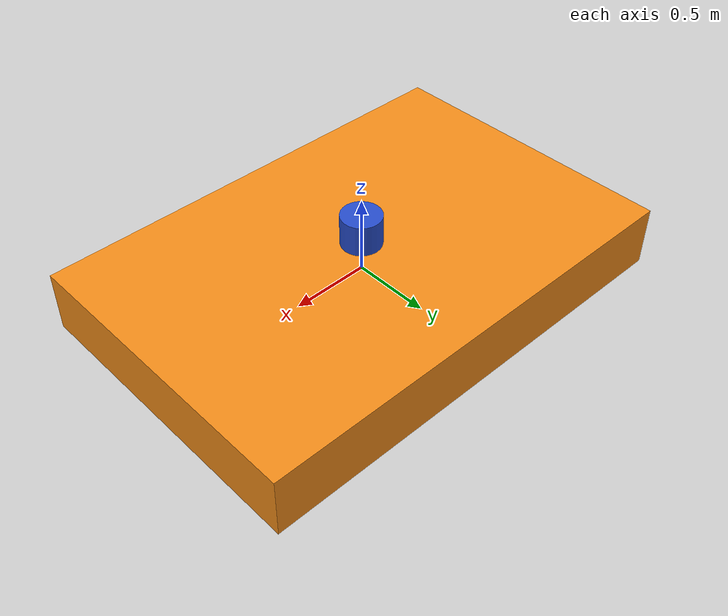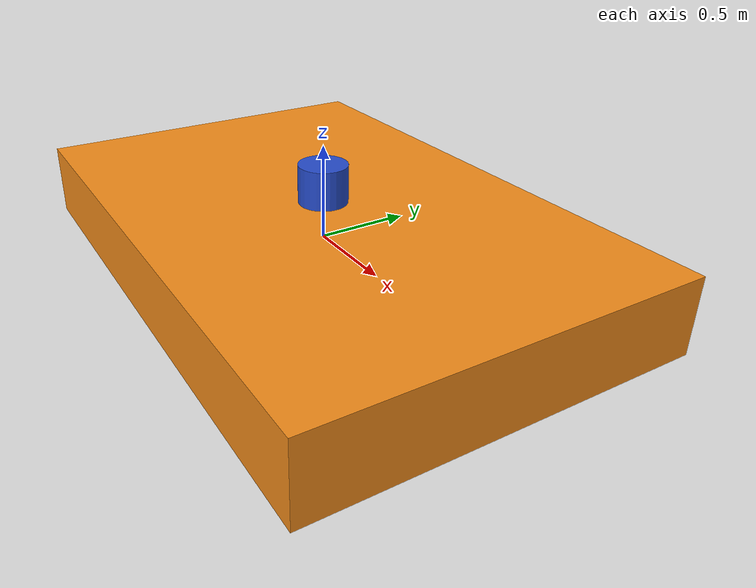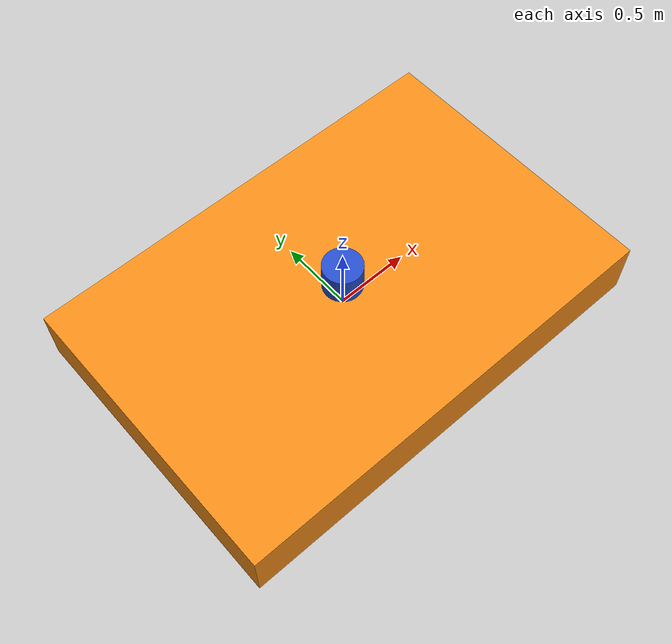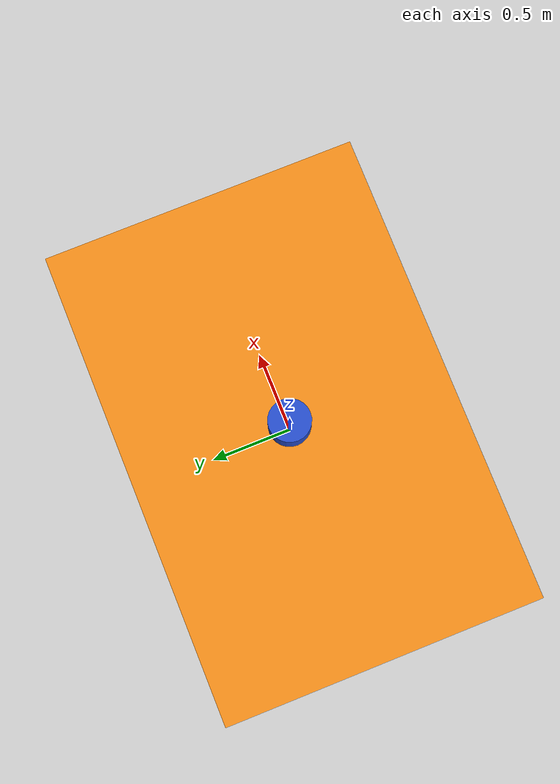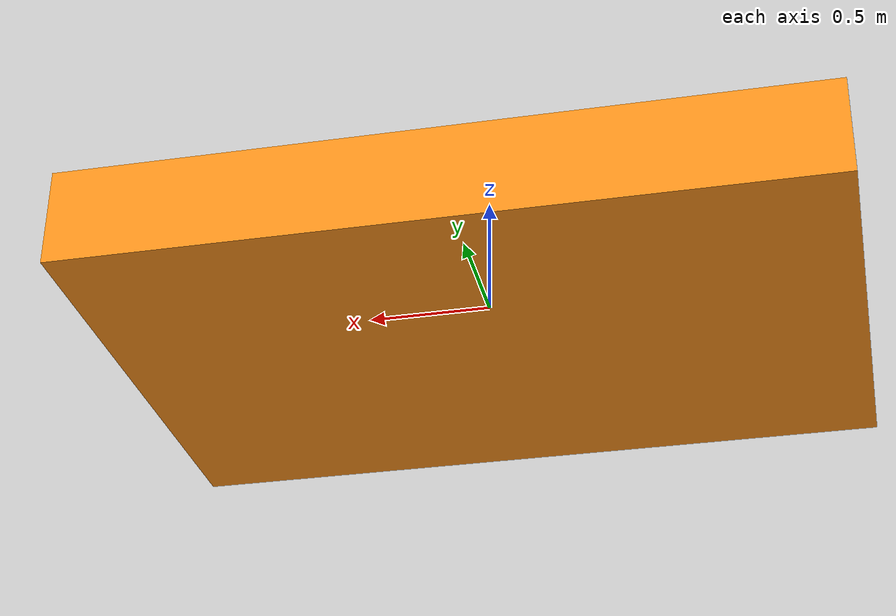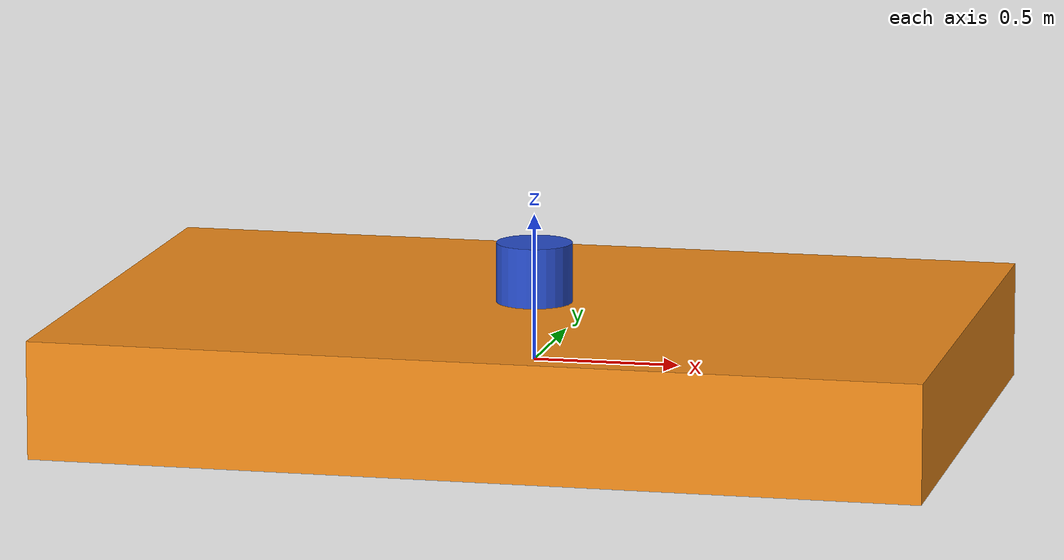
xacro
<?xml version="1.0"?>
<!-- Revolute-Revolute Manipulator -->
<robot name="robo" xmlns:xacro="http://www.ros.org/wiki/xacro">

  <!-- Constants for robot dimensions -->
  <xacro:property name="PI" value="3.1415926535897931"/>
  <xacro:property name="mass" value="5" /> <!-- arbitrary value for mass -->
  <xacro:property name="width" value="1.3" /> <!-- Square dimensions (widthxwidth) of beams -->
  <xacro:property name="height1" value="0.2" /> <!-- Link 1 -->
  <xacro:property name="height2" value="1" /> <!-- Link 2 -->
  <xacro:property name="height3" value="1" /> <!-- Link 3 -->
  <xacro:property name="camera_link" value="0.05" /> <!-- Size of square 'camera' box -->
  <xacro:property name="axel_offset" value="0.05" /> <!-- Space btw top of beam and the each joint -->

  <!-- Import all Gazebo-customization elements, including Gazebo colors -->
  <xacro:include filename="$(find table_docking)/urdf/robo.gazebo" />
  <!-- Import Rviz colors -->
  <xacro:include filename="$(find table_docking)/urdf/materials.xacro" />

  <!-- Used for fixing robot to Gazebo 'base_link' -->

  <!-- Base Link -->
  <link name="robo_base">
    <collision>
      <origin xyz="0 0 0" rpy="0 0 0"/>
      <geometry>
	<box size="3 2 0.4"/>
      </geometry>
    </collision>

    <visual>
      <origin xyz="0 0 0" rpy="0 0 0"/>
      <geometry>
	<box size="3 2 0.4"/>
      </geometry>
      <material name="orange"/>

    </visual>

    <inertial>
      <origin xyz="0 0 0" rpy="0 0 0"/>
      <mass value="${mass}"/>
      <inertia
	  ixx="1.0" ixy="0.0" ixz="0.0"
	  iyy="1.0" iyz="0.0"
	  izz="1.0"/>
    </inertial>
  </link>
<link name="laser_link">
    <visual>
      <origin xyz="0 0 0" rpy="0 0 0" />
      <geometry>
         <cylinder length="0.21" radius="0.13"/>
      </geometry>
      <material name="Blue" />
    </visual>
  </link>
  <joint name="base_laser_joint" type="fixed">
    <origin xyz="0 0 0.3" rpy="0 0 0" />
    <parent link="robo_base"/>
    <child link="laser_link" />
  </joint>
  <gazebo reference="laser_link">
    <material>Gazebo/Blue</material>
    <turnGravityOff>false</turnGravityOff>
    <sensor type="ray" name="laser_sensor">
      <pose>0 0 0 0 0 0</pose>
      <visualize>true</visualize>
      <update_rate>100</update_rate>
      <ray>
        <scan>
          <horizontal>
            <samples>720</samples>
            <resolution>1</resolution>
            <min_angle>-1.570796</min_angle>
            <max_angle>4.71239</max_angle>
          </horizontal>
        </scan>
        <range>
          <min>0.10</min>
          <max>100.0</max>
          <resolution>0.001</resolution>
        </range>
      </ray>
      <plugin name="gazebo_ros_head_hokuyo_controller" filename="libgazebo_ros_laser.so">
        <topicName>/scan</topicName>
        <frameName>laser_link</frameName>
      </plugin>
    </sensor>
  </gazebo>

</robot>
